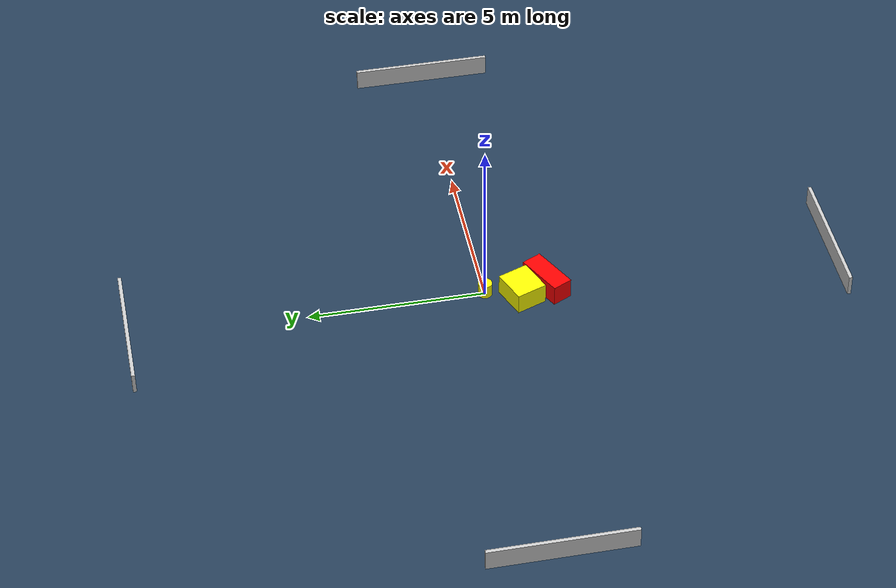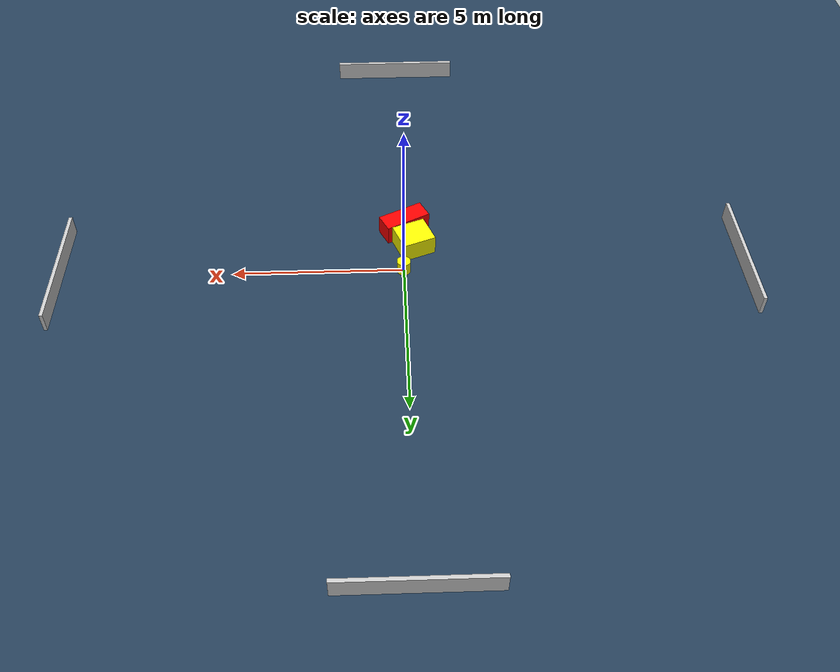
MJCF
<?xml version="1.0" ?>
<mujoco model="generated_environment">
  <option timestep="0.01" integrator="RK4" cone="elliptic"/>
  <default>
    <geom density="1"/>
  </default>
  <asset>
    <texture builtin="gradient" height="3072" name="skybox" rgb1="0.3 0.5 0.7" rgb2="0 0 0" type="skybox" width="512"/>
    <texture builtin="checker" height="300" name="groundplane" rgb1="0.2 0.3 0.4" rgb2="0.1 0.2 0.3" type="2d" width="300"/>
    <material name="groundplane" reflectance="0.2" texrepeat="5 5" texture="groundplane"/>
  </asset>
  <worldbody>
    <light dir="0 0 -1" directional="true" pos="0 0 1.5"/>
    <geom condim="3" friction="0.5 0.005 0.001" material="groundplane" name="floor" pos="0 0 0" size="0 0 0.05" type="plane"/>
    <body name="walls">
      <geom name="wall_1" condim="4" pos="-10.0 0.0 0.3" rgba="0.800000011920929 0.800000011920929 0.800000011920929 1.0" size="0.05 2.0 0.3" type="box"/>
      <geom name="wall_2" condim="4" pos="10.0 0.0 0.3" rgba="0.800000011920929 0.800000011920929 0.800000011920929 1.0" size="0.05 2.0 0.3" type="box"/>
      <geom name="wall_3" condim="4" pos="0.0 -10.0 0.3" rgba="0.800000011920929 0.800000011920929 0.800000011920929 1.0" size="2.0 0.05 0.3" type="box"/>
      <geom name="wall_4" condim="4" pos="0.0 10.0 0.3" rgba="0.800000011920929 0.800000011920929 0.800000011920929 1.0" size="2.0 0.05 0.3" type="box"/>
    </body>
    <body name="robot">
      <joint name="joint_x" type="slide" pos="0 0 0" axis="1 0 0"/>
      <joint name="joint_y" type="slide" pos="0 0 0" axis="0 1 0"/>
      <geom name="robot" type="cylinder" pos="0.0 0.0 0.2" size="0.2 0.2 0.0" mass="5.0" friction="1.0 0.005 0.0001" condim="4" rgba="1.0 1.0 0.0 1.0"/>
    </body>
    <body name="obstacle_1_movable">
      <geom name="obstacle_1_movable" condim="4" pos="-0.32827372713460107 -0.9923653232258947 0.3" euler="0 0 111.15669734972828" friction="0.0 0.005 0.001" rgba="1.0 1.0 0.0 1.0" size="0.44936745936254463 0.5038287388303002 0.3" type="box" mass="0.1"/>
      <joint type="free"/>
    </body>
    <body name="obstacle_2_static">
      <geom name="obstacle_2_static" condim="4" pos="-0.06556740445132396 -1.7507358261941608 0.3" euler="0 0 116.70214113213521" friction="0.0 0.005 0.001" rgba="1.0 0.0 0.0 1.0" size="0.29355840554812695 0.7002841841331096 0.3" type="box"/>
    </body>
  </worldbody>
  <actuator>
    <motor name="actuator_x" joint="joint_x" gear="1" ctrlrange="-1 1"/>
    <motor name="actuator_y" joint="joint_y" gear="1" ctrlrange="-1 1"/>
  </actuator>
</mujoco>
